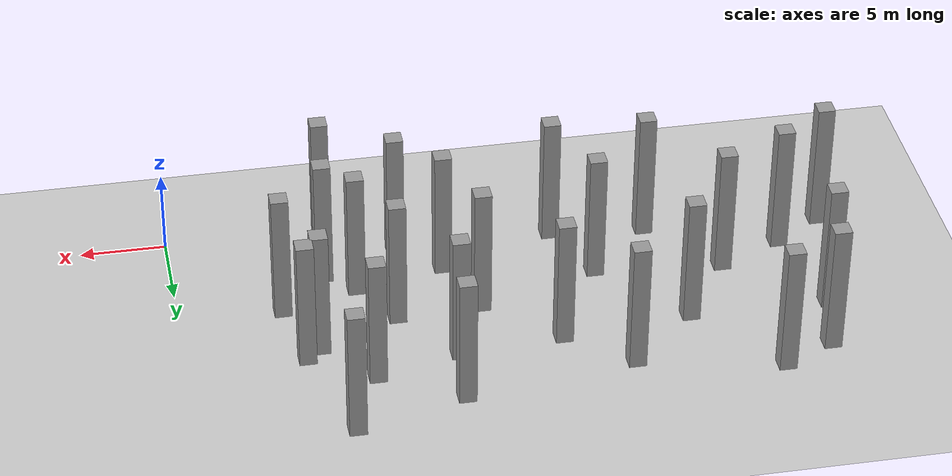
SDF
<sdf version="1.7">
 <world name="default">
  <model name="ground_plane">
   <static>1</static>
   <link name="link">
    <collision name="collision">
     <geometry><plane><normal>0 0 1</normal><size>100 100</size></plane></geometry>
     <surface>
      <contact><collide_bitmask>65535</collide_bitmask></contact>
      <friction><ode><mu>100</mu><mu2>50</mu2></ode></friction>
     </surface>
    </collision>
    <visual name="visual">
     <cast_shadows>0</cast_shadows>
     <geometry><plane><normal>0 0 1</normal><size>100 100</size></plane></geometry>
     <material>
      <script><uri>file://media/materials/scripts/gazebo.material</uri><name>Gazebo/Grey</name></script>
     </material>
    </visual>
   </link>
  </model>
  <model name="unit_box_static66">
   <link name="link">
    <inertial>
     <mass>1</mass>
     <inertia>
      <ixx>0.166667</ixx>
      <ixy>0</ixy>
      <ixz>0</ixz>
      <iyy>0.166667</iyy>
      <iyz>0</iyz>
      <izz>0.166667</izz>
     </inertia>
    </inertial>
    <visual name="visual">
     <geometry><box><size>1 1 8</size></box></geometry>
     <material>
      <script><name>Gazebo/Grey</name><uri>file://media/materials/scripts/gazebo.material</uri></script>
      <shader type="pixel"/>
     </material>
    </visual>
    <collision name="collision">
     <geometry><box><size>1 1 8</size></box></geometry>
     <surface>
      <friction>
       <ode><mu>1</mu><mu2>1</mu2><fdir1>0 0 0</fdir1><slip1>0</slip1><slip2>0</slip2></ode>
       <torsional>
        <coefficient>1</coefficient>
        <patch_radius>0</patch_radius>
        <surface_radius>0</surface_radius>
        <use_patch_radius>1</use_patch_radius>
        <ode><slip>0</slip></ode>
       </torsional>
      </friction>
      <bounce><restitution_coefficient>0</restitution_coefficient><threshold>1e+06</threshold></bounce>
      <contact>
       <collide_without_contact>0</collide_without_contact>
       <collide_without_contact_bitmask>1</collide_without_contact_bitmask>
       <collide_bitmask>1</collide_bitmask>
       <ode>
        <soft_cfm>0</soft_cfm>
        <soft_erp>0.2</soft_erp>
        <kp>1e+13</kp>
        <kd>1</kd>
        <max_vel>0.01</max_vel>
        <min_depth>0</min_depth>
       </ode>
       <bullet>
        <split_impulse>1</split_impulse>
        <split_impulse_penetration_threshold>-0.01</split_impulse_penetration_threshold>
        <soft_cfm>0</soft_cfm>
        <soft_erp>0.2</soft_erp>
        <kp>1e+13</kp>
        <kd>1</kd>
       </bullet>
      </contact>
     </surface>
    </collision>
   </link>
   <static>1</static>
   <pose>-15.7173 4.8814 4 0 -0 0</pose>
  </model>
  <model name="unit_box_static68">
   <link name="link">
    <inertial>
     <mass>1</mass>
     <inertia>
      <ixx>0.166667</ixx>
      <ixy>0</ixy>
      <ixz>0</ixz>
      <iyy>0.166667</iyy>
      <iyz>0</iyz>
      <izz>0.166667</izz>
     </inertia>
    </inertial>
    <visual name="visual">
     <geometry><box><size>1 1 8</size></box></geometry>
     <material>
      <script><name>Gazebo/Grey</name><uri>file://media/materials/scripts/gazebo.material</uri></script>
      <shader type="pixel"/>
     </material>
    </visual>
    <collision name="collision">
     <geometry><box><size>1 1 8</size></box></geometry>
     <surface>
      <friction>
       <ode><mu>1</mu><mu2>1</mu2><fdir1>0 0 0</fdir1><slip1>0</slip1><slip2>0</slip2></ode>
       <torsional>
        <coefficient>1</coefficient>
        <patch_radius>0</patch_radius>
        <surface_radius>0</surface_radius>
        <use_patch_radius>1</use_patch_radius>
        <ode><slip>0</slip></ode>
       </torsional>
      </friction>
      <bounce><restitution_coefficient>0</restitution_coefficient><threshold>1e+06</threshold></bounce>
      <contact>
       <collide_without_contact>0</collide_without_contact>
       <collide_without_contact_bitmask>1</collide_without_contact_bitmask>
       <collide_bitmask>1</collide_bitmask>
       <ode>
        <soft_cfm>0</soft_cfm>
        <soft_erp>0.2</soft_erp>
        <kp>1e+13</kp>
        <kd>1</kd>
        <max_vel>0.01</max_vel>
        <min_depth>0</min_depth>
       </ode>
       <bullet>
        <split_impulse>1</split_impulse>
        <split_impulse_penetration_threshold>-0.01</split_impulse_penetration_threshold>
        <soft_cfm>0</soft_cfm>
        <soft_erp>0.2</soft_erp>
        <kp>1e+13</kp>
        <kd>1</kd>
       </bullet>
      </contact>
     </surface>
    </collision>
   </link>
   <static>1</static>
   <pose>-8.76914 4.5745 4 0 -0 0</pose>
  </model>
  <model name="unit_box_static69">
   <link name="link">
    <inertial>
     <mass>1</mass>
     <inertia>
      <ixx>0.166667</ixx>
      <ixy>0</ixy>
      <ixz>0</ixz>
      <iyy>0.166667</iyy>
      <iyz>0</iyz>
      <izz>0.166667</izz>
     </inertia>
    </inertial>
    <visual name="visual">
     <geometry><box><size>1 1 8</size></box></geometry>
     <material>
      <script><name>Gazebo/Grey</name><uri>file://media/materials/scripts/gazebo.material</uri></script>
      <shader type="pixel"/>
     </material>
    </visual>
    <collision name="collision">
     <geometry><box><size>1 1 8</size></box></geometry>
     <surface>
      <friction>
       <ode><mu>1</mu><mu2>1</mu2><fdir1>0 0 0</fdir1><slip1>0</slip1><slip2>0</slip2></ode>
       <torsional>
        <coefficient>1</coefficient>
        <patch_radius>0</patch_radius>
        <surface_radius>0</surface_radius>
        <use_patch_radius>1</use_patch_radius>
        <ode><slip>0</slip></ode>
       </torsional>
      </friction>
      <bounce><restitution_coefficient>0</restitution_coefficient><threshold>1e+06</threshold></bounce>
      <contact>
       <collide_without_contact>0</collide_without_contact>
       <collide_without_contact_bitmask>1</collide_without_contact_bitmask>
       <collide_bitmask>1</collide_bitmask>
       <ode>
        <soft_cfm>0</soft_cfm>
        <soft_erp>0.2</soft_erp>
        <kp>1e+13</kp>
        <kd>1</kd>
        <max_vel>0.01</max_vel>
        <min_depth>0</min_depth>
       </ode>
       <bullet>
        <split_impulse>1</split_impulse>
        <split_impulse_penetration_threshold>-0.01</split_impulse_penetration_threshold>
        <soft_cfm>0</soft_cfm>
        <soft_erp>0.2</soft_erp>
        <kp>1e+13</kp>
        <kd>1</kd>
       </bullet>
      </contact>
     </surface>
    </collision>
   </link>
   <static>1</static>
   <pose>-10.4438 6.09552 4 0 -0 0</pose>
  </model>
  <model name="unit_box_static71">
   <link name="link">
    <inertial>
     <mass>1</mass>
     <inertia>
      <ixx>0.166667</ixx>
      <ixy>0</ixy>
      <ixz>0</ixz>
      <iyy>0.166667</iyy>
      <iyz>0</iyz>
      <izz>0.166667</izz>
     </inertia>
    </inertial>
    <visual name="visual">
     <geometry><box><size>1 1 8</size></box></geometry>
     <material>
      <script><name>Gazebo/Grey</name><uri>file://media/materials/scripts/gazebo.material</uri></script>
      <shader type="pixel"/>
     </material>
    </visual>
    <collision name="collision">
     <geometry><box><size>1 1 8</size></box></geometry>
     <surface>
      <friction>
       <ode><mu>1</mu><mu2>1</mu2><fdir1>0 0 0</fdir1><slip1>0</slip1><slip2>0</slip2></ode>
       <torsional>
        <coefficient>1</coefficient>
        <patch_radius>0</patch_radius>
        <surface_radius>0</surface_radius>
        <use_patch_radius>1</use_patch_radius>
        <ode><slip>0</slip></ode>
       </torsional>
      </friction>
      <bounce><restitution_coefficient>0</restitution_coefficient><threshold>1e+06</threshold></bounce>
      <contact>
       <collide_without_contact>0</collide_without_contact>
       <collide_without_contact_bitmask>1</collide_without_contact_bitmask>
       <collide_bitmask>1</collide_bitmask>
       <ode>
        <soft_cfm>0</soft_cfm>
        <soft_erp>0.2</soft_erp>
        <kp>1e+13</kp>
        <kd>1</kd>
        <max_vel>0.01</max_vel>
        <min_depth>0</min_depth>
       </ode>
       <bullet>
        <split_impulse>1</split_impulse>
        <split_impulse_penetration_threshold>-0.01</split_impulse_penetration_threshold>
        <soft_cfm>0</soft_cfm>
        <soft_erp>0.2</soft_erp>
        <kp>1e+13</kp>
        <kd>1</kd>
       </bullet>
      </contact>
     </surface>
    </collision>
   </link>
   <static>1</static>
   <pose>-38.5507 3.94057 4 0 -0 0</pose>
  </model>
  <model name="unit_box_static72">
   <link name="link">
    <inertial>
     <mass>1</mass>
     <inertia>
      <ixx>0.166667</ixx>
      <ixy>0</ixy>
      <ixz>0</ixz>
      <iyy>0.166667</iyy>
      <iyz>0</iyz>
      <izz>0.166667</izz>
     </inertia>
    </inertial>
    <visual name="visual">
     <geometry><box><size>1 1 8</size></box></geometry>
     <material>
      <script><name>Gazebo/Grey</name><uri>file://media/materials/scripts/gazebo.material</uri></script>
      <shader type="pixel"/>
     </material>
    </visual>
    <collision name="collision">
     <geometry><box><size>1 1 8</size></box></geometry>
     <surface>
      <friction>
       <ode><mu>1</mu><mu2>1</mu2><fdir1>0 0 0</fdir1><slip1>0</slip1><slip2>0</slip2></ode>
       <torsional>
        <coefficient>1</coefficient>
        <patch_radius>0</patch_radius>
        <surface_radius>0</surface_radius>
        <use_patch_radius>1</use_patch_radius>
        <ode><slip>0</slip></ode>
       </torsional>
      </friction>
      <bounce><restitution_coefficient>0</restitution_coefficient><threshold>1e+06</threshold></bounce>
      <contact>
       <collide_without_contact>0</collide_without_contact>
       <collide_without_contact_bitmask>1</collide_without_contact_bitmask>
       <collide_bitmask>1</collide_bitmask>
       <ode>
        <soft_cfm>0</soft_cfm>
        <soft_erp>0.2</soft_erp>
        <kp>1e+13</kp>
        <kd>1</kd>
        <max_vel>0.01</max_vel>
        <min_depth>0</min_depth>
       </ode>
       <bullet>
        <split_impulse>1</split_impulse>
        <split_impulse_penetration_threshold>-0.01</split_impulse_penetration_threshold>
        <soft_cfm>0</soft_cfm>
        <soft_erp>0.2</soft_erp>
        <kp>1e+13</kp>
        <kd>1</kd>
       </bullet>
      </contact>
     </surface>
    </collision>
   </link>
   <static>1</static>
   <pose>-24.94 15.4237 4 0 -0 0</pose>
  </model>
  <model name="unit_box_static82">
   <link name="link">
    <inertial>
     <mass>1</mass>
     <inertia>
      <ixx>0.166667</ixx>
      <ixy>0</ixy>
      <ixz>0</ixz>
      <iyy>0.166667</iyy>
      <iyz>0</iyz>
      <izz>0.166667</izz>
     </inertia>
    </inertial>
    <visual name="visual">
     <geometry><box><size>1 1 8</size></box></geometry>
     <material>
      <script><name>Gazebo/Grey</name><uri>file://media/materials/scripts/gazebo.material</uri></script>
      <shader type="pixel"/>
     </material>
    </visual>
    <collision name="collision">
     <geometry><box><size>1 1 8</size></box></geometry>
     <surface>
      <friction>
       <ode><mu>1</mu><mu2>1</mu2><fdir1>0 0 0</fdir1><slip1>0</slip1><slip2>0</slip2></ode>
       <torsional>
        <coefficient>1</coefficient>
        <patch_radius>0</patch_radius>
        <surface_radius>0</surface_radius>
        <use_patch_radius>1</use_patch_radius>
        <ode><slip>0</slip></ode>
       </torsional>
      </friction>
      <bounce><restitution_coefficient>0</restitution_coefficient><threshold>1e+06</threshold></bounce>
      <contact>
       <collide_without_contact>0</collide_without_contact>
       <collide_without_contact_bitmask>1</collide_without_contact_bitmask>
       <collide_bitmask>1</collide_bitmask>
       <ode>
        <soft_cfm>0</soft_cfm>
        <soft_erp>0.2</soft_erp>
        <kp>1e+13</kp>
        <kd>1</kd>
        <max_vel>0.01</max_vel>
        <min_depth>0</min_depth>
       </ode>
       <bullet>
        <split_impulse>1</split_impulse>
        <split_impulse_penetration_threshold>-0.01</split_impulse_penetration_threshold>
        <soft_cfm>0</soft_cfm>
        <soft_erp>0.2</soft_erp>
        <kp>1e+13</kp>
        <kd>1</kd>
       </bullet>
      </contact>
     </surface>
    </collision>
   </link>
   <static>1</static>
   <pose>-9.21757 0.33254 4 0 -0 0</pose>
  </model>
  <model name="unit_box_static83">
   <link name="link">
    <inertial>
     <mass>1</mass>
     <inertia>
      <ixx>0.166667</ixx>
      <ixy>0</ixy>
      <ixz>0</ixz>
      <iyy>0.166667</iyy>
      <iyz>0</iyz>
      <izz>0.166667</izz>
     </inertia>
    </inertial>
    <visual name="visual">
     <geometry><box><size>1 1 8</size></box></geometry>
     <material>
      <script><name>Gazebo/Grey</name><uri>file://media/materials/scripts/gazebo.material</uri></script>
      <shader type="pixel"/>
     </material>
    </visual>
    <collision name="collision">
     <geometry><box><size>1 1 8</size></box></geometry>
     <surface>
      <friction>
       <ode><mu>1</mu><mu2>1</mu2><fdir1>0 0 0</fdir1><slip1>0</slip1><slip2>0</slip2></ode>
       <torsional>
        <coefficient>1</coefficient>
        <patch_radius>0</patch_radius>
        <surface_radius>0</surface_radius>
        <use_patch_radius>1</use_patch_radius>
        <ode><slip>0</slip></ode>
       </torsional>
      </friction>
      <bounce><restitution_coefficient>0</restitution_coefficient><threshold>1e+06</threshold></bounce>
      <contact>
       <collide_without_contact>0</collide_without_contact>
       <collide_without_contact_bitmask>1</collide_without_contact_bitmask>
       <collide_bitmask>1</collide_bitmask>
       <ode>
        <soft_cfm>0</soft_cfm>
        <soft_erp>0.2</soft_erp>
        <kp>1e+13</kp>
        <kd>1</kd>
        <max_vel>0.01</max_vel>
        <min_depth>0</min_depth>
       </ode>
       <bullet>
        <split_impulse>1</split_impulse>
        <split_impulse_penetration_threshold>-0.01</split_impulse_penetration_threshold>
        <soft_cfm>0</soft_cfm>
        <soft_erp>0.2</soft_erp>
        <kp>1e+13</kp>
        <kd>1</kd>
       </bullet>
      </contact>
     </surface>
    </collision>
   </link>
   <static>1</static>
   <pose>-35.6682 5.76323 4 0 -0 0</pose>
  </model>
  <model name="unit_box_static84">
   <link name="link">
    <inertial>
     <mass>1</mass>
     <inertia>
      <ixx>0.166667</ixx>
      <ixy>0</ixy>
      <ixz>0</ixz>
      <iyy>0.166667</iyy>
      <iyz>0</iyz>
      <izz>0.166667</izz>
     </inertia>
    </inertial>
    <visual name="visual">
     <geometry><box><size>1 1 8</size></box></geometry>
     <material>
      <script><name>Gazebo/Grey</name><uri>file://media/materials/scripts/gazebo.material</uri></script>
      <shader type="pixel"/>
     </material>
    </visual>
    <collision name="collision">
     <geometry><box><size>1 1 8</size></box></geometry>
     <surface>
      <friction>
       <ode><mu>1</mu><mu2>1</mu2><fdir1>0 0 0</fdir1><slip1>0</slip1><slip2>0</slip2></ode>
       <torsional>
        <coefficient>1</coefficient>
        <patch_radius>0</patch_radius>
        <surface_radius>0</surface_radius>
        <use_patch_radius>1</use_patch_radius>
        <ode><slip>0</slip></ode>
       </torsional>
      </friction>
      <bounce><restitution_coefficient>0</restitution_coefficient><threshold>1e+06</threshold></bounce>
      <contact>
       <collide_without_contact>0</collide_without_contact>
       <collide_without_contact_bitmask>1</collide_without_contact_bitmask>
       <collide_bitmask>1</collide_bitmask>
       <ode>
        <soft_cfm>0</soft_cfm>
        <soft_erp>0.2</soft_erp>
        <kp>1e+13</kp>
        <kd>1</kd>
        <max_vel>0.01</max_vel>
        <min_depth>0</min_depth>
       </ode>
       <bullet>
        <split_impulse>1</split_impulse>
        <split_impulse_penetration_threshold>-0.01</split_impulse_penetration_threshold>
        <soft_cfm>0</soft_cfm>
        <soft_erp>0.2</soft_erp>
        <kp>1e+13</kp>
        <kd>1</kd>
       </bullet>
      </contact>
     </surface>
    </collision>
   </link>
   <static>1</static>
   <pose>-36.1901 15.687 4 0 -0 0</pose>
  </model>
  <model name="unit_box_static86">
   <link name="link">
    <inertial>
     <mass>1</mass>
     <inertia>
      <ixx>0.166667</ixx>
      <ixy>0</ixy>
      <ixz>0</ixz>
      <iyy>0.166667</iyy>
      <iyz>0</iyz>
      <izz>0.166667</izz>
     </inertia>
    </inertial>
    <visual name="visual">
     <geometry><box><size>1 1 8</size></box></geometry>
     <material>
      <script><name>Gazebo/Grey</name><uri>file://media/materials/scripts/gazebo.material</uri></script>
      <shader type="pixel"/>
     </material>
    </visual>
    <collision name="collision">
     <geometry><box><size>1 1 8</size></box></geometry>
     <surface>
      <friction>
       <ode><mu>1</mu><mu2>1</mu2><fdir1>0 0 0</fdir1><slip1>0</slip1><slip2>0</slip2></ode>
       <torsional>
        <coefficient>1</coefficient>
        <patch_radius>0</patch_radius>
        <surface_radius>0</surface_radius>
        <use_patch_radius>1</use_patch_radius>
        <ode><slip>0</slip></ode>
       </torsional>
      </friction>
      <bounce><restitution_coefficient>0</restitution_coefficient><threshold>1e+06</threshold></bounce>
      <contact>
       <collide_without_contact>0</collide_without_contact>
       <collide_without_contact_bitmask>1</collide_without_contact_bitmask>
       <collide_bitmask>1</collide_bitmask>
       <ode>
        <soft_cfm>0</soft_cfm>
        <soft_erp>0.2</soft_erp>
        <kp>1e+13</kp>
        <kd>1</kd>
        <max_vel>0.01</max_vel>
        <min_depth>0</min_depth>
       </ode>
       <bullet>
        <split_impulse>1</split_impulse>
        <split_impulse_penetration_threshold>-0.01</split_impulse_penetration_threshold>
        <soft_cfm>0</soft_cfm>
        <soft_erp>0.2</soft_erp>
        <kp>1e+13</kp>
        <kd>1</kd>
       </bullet>
      </contact>
     </surface>
    </collision>
   </link>
   <static>1</static>
   <pose>-5.98534 7.44605 4 0 -0 0</pose>
  </model>
  <model name="unit_box_static87">
   <link name="link">
    <inertial>
     <mass>1</mass>
     <inertia>
      <ixx>0.166667</ixx>
      <ixy>0</ixy>
      <ixz>0</ixz>
      <iyy>0.166667</iyy>
      <iyz>0</iyz>
      <izz>0.166667</izz>
     </inertia>
    </inertial>
    <visual name="visual">
     <geometry><box><size>1 1 8</size></box></geometry>
     <material>
      <script><name>Gazebo/Grey</name><uri>file://media/materials/scripts/gazebo.material</uri></script>
      <shader type="pixel"/>
     </material>
    </visual>
    <collision name="collision">
     <geometry><box><size>1 1 8</size></box></geometry>
     <surface>
      <friction>
       <ode><mu>1</mu><mu2>1</mu2><fdir1>0 0 0</fdir1><slip1>0</slip1><slip2>0</slip2></ode>
       <torsional>
        <coefficient>1</coefficient>
        <patch_radius>0</patch_radius>
        <surface_radius>0</surface_radius>
        <use_patch_radius>1</use_patch_radius>
        <ode><slip>0</slip></ode>
       </torsional>
      </friction>
      <bounce><restitution_coefficient>0</restitution_coefficient><threshold>1e+06</threshold></bounce>
      <contact>
       <collide_without_contact>0</collide_without_contact>
       <collide_without_contact_bitmask>1</collide_without_contact_bitmask>
       <collide_bitmask>1</collide_bitmask>
       <ode>
        <soft_cfm>0</soft_cfm>
        <soft_erp>0.2</soft_erp>
        <kp>1e+13</kp>
        <kd>1</kd>
        <max_vel>0.01</max_vel>
        <min_depth>0</min_depth>
       </ode>
       <bullet>
        <split_impulse>1</split_impulse>
        <split_impulse_penetration_threshold>-0.01</split_impulse_penetration_threshold>
        <soft_cfm>0</soft_cfm>
        <soft_erp>0.2</soft_erp>
        <kp>1e+13</kp>
        <kd>1</kd>
       </bullet>
      </contact>
     </surface>
    </collision>
   </link>
   <static>1</static>
   <pose>-28.0949 3.15473 4 0 -0 0</pose>
  </model>
  <model name="unit_box_static89">
   <link name="link">
    <inertial>
     <mass>1</mass>
     <inertia>
      <ixx>0.166667</ixx>
      <ixy>0</ixy>
      <ixz>0</ixz>
      <iyy>0.166667</iyy>
      <iyz>0</iyz>
      <izz>0.166667</izz>
     </inertia>
    </inertial>
    <visual name="visual">
     <geometry><box><size>1 1 8</size></box></geometry>
     <material>
      <script><name>Gazebo/Grey</name><uri>file://media/materials/scripts/gazebo.material</uri></script>
      <shader type="pixel"/>
     </material>
    </visual>
    <collision name="collision">
     <geometry><box><size>1 1 8</size></box></geometry>
     <surface>
      <friction>
       <ode><mu>1</mu><mu2>1</mu2><fdir1>0 0 0</fdir1><slip1>0</slip1><slip2>0</slip2></ode>
       <torsional>
        <coefficient>1</coefficient>
        <patch_radius>0</patch_radius>
        <surface_radius>0</surface_radius>
        <use_patch_radius>1</use_patch_radius>
        <ode><slip>0</slip></ode>
       </torsional>
      </friction>
      <bounce><restitution_coefficient>0</restitution_coefficient><threshold>1e+06</threshold></bounce>
      <contact>
       <collide_without_contact>0</collide_without_contact>
       <collide_without_contact_bitmask>1</collide_without_contact_bitmask>
       <collide_bitmask>1</collide_bitmask>
       <ode>
        <soft_cfm>0</soft_cfm>
        <soft_erp>0.2</soft_erp>
        <kp>1e+13</kp>
        <kd>1</kd>
        <max_vel>0.01</max_vel>
        <min_depth>0</min_depth>
       </ode>
       <bullet>
        <split_impulse>1</split_impulse>
        <split_impulse_penetration_threshold>-0.01</split_impulse_penetration_threshold>
        <soft_cfm>0</soft_cfm>
        <soft_erp>0.2</soft_erp>
        <kp>1e+13</kp>
        <kd>1</kd>
       </bullet>
      </contact>
     </surface>
    </collision>
   </link>
   <static>1</static>
   <pose>-31.8371 7.44602 4 0 -0 0</pose>
  </model>
  <model name="unit_box_static100">
   <link name="link">
    <inertial>
     <mass>1</mass>
     <inertia>
      <ixx>0.166667</ixx>
      <ixy>0</ixy>
      <ixz>0</ixz>
      <iyy>0.166667</iyy>
      <iyz>0</iyz>
      <izz>0.166667</izz>
     </inertia>
    </inertial>
    <visual name="visual">
     <geometry><box><size>1 1 8</size></box></geometry>
     <material>
      <script><name>Gazebo/Grey</name><uri>file://media/materials/scripts/gazebo.material</uri></script>
      <shader type="pixel"/>
     </material>
    </visual>
    <collision name="collision">
     <geometry><box><size>1 1 8</size></box></geometry>
     <surface>
      <friction>
       <ode><mu>1</mu><mu2>1</mu2><fdir1>0 0 0</fdir1><slip1>0</slip1><slip2>0</slip2></ode>
       <torsional>
        <coefficient>1</coefficient>
        <patch_radius>0</patch_radius>
        <surface_radius>0</surface_radius>
        <use_patch_radius>1</use_patch_radius>
        <ode><slip>0</slip></ode>
       </torsional>
      </friction>
      <bounce><restitution_coefficient>0</restitution_coefficient><threshold>1e+06</threshold></bounce>
      <contact>
       <collide_without_contact>0</collide_without_contact>
       <collide_without_contact_bitmask>1</collide_without_contact_bitmask>
       <collide_bitmask>1</collide_bitmask>
       <ode>
        <soft_cfm>0</soft_cfm>
        <soft_erp>0.2</soft_erp>
        <kp>1e+13</kp>
        <kd>1</kd>
        <max_vel>0.01</max_vel>
        <min_depth>0</min_depth>
       </ode>
       <bullet>
        <split_impulse>1</split_impulse>
        <split_impulse_penetration_threshold>-0.01</split_impulse_penetration_threshold>
        <soft_cfm>0</soft_cfm>
        <soft_erp>0.2</soft_erp>
        <kp>1e+13</kp>
        <kd>1</kd>
       </bullet>
      </contact>
     </surface>
    </collision>
   </link>
   <static>1</static>
   <pose>-6.78153 12.0356 4 0 -0 0</pose>
  </model>
  <model name="unit_box_static108">
   <link name="link">
    <inertial>
     <mass>1</mass>
     <inertia>
      <ixx>0.166667</ixx>
      <ixy>0</ixy>
      <ixz>0</ixz>
      <iyy>0.166667</iyy>
      <iyz>0</iyz>
      <izz>0.166667</izz>
     </inertia>
    </inertial>
    <visual name="visual">
     <geometry><box><size>1 1 8</size></box></geometry>
     <material>
      <script><name>Gazebo/Grey</name><uri>file://media/materials/scripts/gazebo.material</uri></script>
      <shader type="pixel"/>
     </material>
    </visual>
    <collision name="collision">
     <geometry><box><size>1 1 8</size></box></geometry>
     <surface>
      <friction>
       <ode><mu>1</mu><mu2>1</mu2><fdir1>0 0 0</fdir1><slip1>0</slip1><slip2>0</slip2></ode>
       <torsional>
        <coefficient>1</coefficient>
        <patch_radius>0</patch_radius>
        <surface_radius>0</surface_radius>
        <use_patch_radius>1</use_patch_radius>
        <ode><slip>0</slip></ode>
       </torsional>
      </friction>
      <bounce><restitution_coefficient>0</restitution_coefficient><threshold>1e+06</threshold></bounce>
      <contact>
       <collide_without_contact>0</collide_without_contact>
       <collide_without_contact_bitmask>1</collide_without_contact_bitmask>
       <collide_bitmask>1</collide_bitmask>
       <ode>
        <soft_cfm>0</soft_cfm>
        <soft_erp>0.2</soft_erp>
        <kp>1e+13</kp>
        <kd>1</kd>
        <max_vel>0.01</max_vel>
        <min_depth>0</min_depth>
       </ode>
       <bullet>
        <split_impulse>1</split_impulse>
        <split_impulse_penetration_threshold>-0.01</split_impulse_penetration_threshold>
        <soft_cfm>0</soft_cfm>
        <soft_erp>0.2</soft_erp>
        <kp>1e+13</kp>
        <kd>1</kd>
       </bullet>
      </contact>
     </surface>
    </collision>
   </link>
   <static>1</static>
   <pose>-33.185 17.1316 4 0 -0 0</pose>
  </model>
  <model name="unit_box_static111">
   <link name="link">
    <inertial>
     <mass>1</mass>
     <inertia>
      <ixx>0.166667</ixx>
      <ixy>0</ixy>
      <ixz>0</ixz>
      <iyy>0.166667</iyy>
      <iyz>0</iyz>
      <izz>0.166667</izz>
     </inertia>
    </inertial>
    <visual name="visual">
     <geometry><box><size>1 1 8</size></box></geometry>
     <material>
      <script><name>Gazebo/Grey</name><uri>file://media/materials/scripts/gazebo.material</uri></script>
      <shader type="pixel"/>
     </material>
    </visual>
    <collision name="collision">
     <geometry><box><size>1 1 8</size></box></geometry>
     <surface>
      <friction>
       <ode><mu>1</mu><mu2>1</mu2><fdir1>0 0 0</fdir1><slip1>0</slip1><slip2>0</slip2></ode>
       <torsional>
        <coefficient>1</coefficient>
        <patch_radius>0</patch_radius>
        <surface_radius>0</surface_radius>
        <use_patch_radius>1</use_patch_radius>
        <ode><slip>0</slip></ode>
       </torsional>
      </friction>
      <bounce><restitution_coefficient>0</restitution_coefficient><threshold>1e+06</threshold></bounce>
      <contact>
       <collide_without_contact>0</collide_without_contact>
       <collide_without_contact_bitmask>1</collide_without_contact_bitmask>
       <collide_bitmask>1</collide_bitmask>
       <ode>
        <soft_cfm>0</soft_cfm>
        <soft_erp>0.2</soft_erp>
        <kp>1e+13</kp>
        <kd>1</kd>
        <max_vel>0.01</max_vel>
        <min_depth>0</min_depth>
       </ode>
       <bullet>
        <split_impulse>1</split_impulse>
        <split_impulse_penetration_threshold>-0.01</split_impulse_penetration_threshold>
        <soft_cfm>0</soft_cfm>
        <soft_erp>0.2</soft_erp>
        <kp>1e+13</kp>
        <kd>1</kd>
       </bullet>
      </contact>
     </surface>
    </collision>
   </link>
   <static>1</static>
   <pose>-13.2701 2.65865 4 0 -0 0</pose>
  </model>
  <model name="unit_box_static114">
   <link name="link">
    <inertial>
     <mass>1</mass>
     <inertia>
      <ixx>0.166667</ixx>
      <ixy>0</ixy>
      <ixz>0</ixz>
      <iyy>0.166667</iyy>
      <iyz>0</iyz>
      <izz>0.166667</izz>
     </inertia>
    </inertial>
    <visual name="visual">
     <geometry><box><size>1 1 8</size></box></geometry>
     <material>
      <script><name>Gazebo/Grey</name><uri>file://media/materials/scripts/gazebo.material</uri></script>
      <shader type="pixel"/>
     </material>
    </visual>
    <collision name="collision">
     <geometry><box><size>1 1 8</size></box></geometry>
     <surface>
      <friction>
       <ode><mu>1</mu><mu2>1</mu2><fdir1>0 0 0</fdir1><slip1>0</slip1><slip2>0</slip2></ode>
       <torsional>
        <coefficient>1</coefficient>
        <patch_radius>0</patch_radius>
        <surface_radius>0</surface_radius>
        <use_patch_radius>1</use_patch_radius>
        <ode><slip>0</slip></ode>
       </torsional>
      </friction>
      <bounce><restitution_coefficient>0</restitution_coefficient><threshold>1e+06</threshold></bounce>
      <contact>
       <collide_without_contact>0</collide_without_contact>
       <collide_without_contact_bitmask>1</collide_without_contact_bitmask>
       <collide_bitmask>1</collide_bitmask>
       <ode>
        <soft_cfm>0</soft_cfm>
        <soft_erp>0.2</soft_erp>
        <kp>1e+13</kp>
        <kd>1</kd>
        <max_vel>0.01</max_vel>
        <min_depth>0</min_depth>
       </ode>
       <bullet>
        <split_impulse>1</split_impulse>
        <split_impulse_penetration_threshold>-0.01</split_impulse_penetration_threshold>
        <soft_cfm>0</soft_cfm>
        <soft_erp>0.2</soft_erp>
        <kp>1e+13</kp>
        <kd>1</kd>
       </bullet>
      </contact>
     </surface>
    </collision>
   </link>
   <static>1</static>
   <pose>-28.9127 11.792 4 0 -0 0</pose>
  </model>
  <model name="unit_box_static120">
   <link name="link">
    <inertial>
     <mass>1</mass>
     <inertia>
      <ixx>0.166667</ixx>
      <ixy>0</ixy>
      <ixz>0</ixz>
      <iyy>0.166667</iyy>
      <iyz>0</iyz>
      <izz>0.166667</izz>
     </inertia>
    </inertial>
    <visual name="visual">
     <geometry><box><size>1 1 8</size></box></geometry>
     <material>
      <script><name>Gazebo/Grey</name><uri>file://media/materials/scripts/gazebo.material</uri></script>
      <shader type="pixel"/>
     </material>
    </visual>
    <collision name="collision">
     <geometry><box><size>1 1 8</size></box></geometry>
     <surface>
      <friction>
       <ode><mu>1</mu><mu2>1</mu2><fdir1>0 0 0</fdir1><slip1>0</slip1><slip2>0</slip2></ode>
       <torsional>
        <coefficient>1</coefficient>
        <patch_radius>0</patch_radius>
        <surface_radius>0</surface_radius>
        <use_patch_radius>1</use_patch_radius>
        <ode><slip>0</slip></ode>
       </torsional>
      </friction>
      <bounce><restitution_coefficient>0</restitution_coefficient><threshold>1e+06</threshold></bounce>
      <contact>
       <collide_without_contact>0</collide_without_contact>
       <collide_without_contact_bitmask>1</collide_without_contact_bitmask>
       <collide_bitmask>1</collide_bitmask>
       <ode>
        <soft_cfm>0</soft_cfm>
        <soft_erp>0.2</soft_erp>
        <kp>1e+13</kp>
        <kd>1</kd>
        <max_vel>0.01</max_vel>
        <min_depth>0</min_depth>
       </ode>
       <bullet>
        <split_impulse>1</split_impulse>
        <split_impulse_penetration_threshold>-0.01</split_impulse_penetration_threshold>
        <soft_cfm>0</soft_cfm>
        <soft_erp>0.2</soft_erp>
        <kp>1e+13</kp>
        <kd>1</kd>
       </bullet>
      </contact>
     </surface>
    </collision>
   </link>
   <static>1</static>
   <pose>-10.4158 14.2993 4 0 -0 0</pose>
  </model>
  <model name="unit_box_static130">
   <link name="link">
    <inertial>
     <mass>1</mass>
     <inertia>
      <ixx>0.166667</ixx>
      <ixy>0</ixy>
      <ixz>0</ixz>
      <iyy>0.166667</iyy>
      <iyz>0</iyz>
      <izz>0.166667</izz>
     </inertia>
    </inertial>
    <visual name="visual">
     <geometry><box><size>1 1 8</size></box></geometry>
     <material>
      <script><name>Gazebo/Grey</name><uri>file://media/materials/scripts/gazebo.material</uri></script>
      <shader type="pixel"/>
     </material>
    </visual>
    <collision name="collision">
     <geometry><box><size>1 1 8</size></box></geometry>
     <surface>
      <friction>
       <ode><mu>1</mu><mu2>1</mu2><fdir1>0 0 0</fdir1><slip1>0</slip1><slip2>0</slip2></ode>
       <torsional>
        <coefficient>1</coefficient>
        <patch_radius>0</patch_radius>
        <surface_radius>0</surface_radius>
        <use_patch_radius>1</use_patch_radius>
        <ode><slip>0</slip></ode>
       </torsional>
      </friction>
      <bounce><restitution_coefficient>0</restitution_coefficient><threshold>1e+06</threshold></bounce>
      <contact>
       <collide_without_contact>0</collide_without_contact>
       <collide_without_contact_bitmask>1</collide_without_contact_bitmask>
       <collide_bitmask>1</collide_bitmask>
       <ode>
        <soft_cfm>0</soft_cfm>
        <soft_erp>0.2</soft_erp>
        <kp>1e+13</kp>
        <kd>1</kd>
        <max_vel>0.01</max_vel>
        <min_depth>0</min_depth>
       </ode>
       <bullet>
        <split_impulse>1</split_impulse>
        <split_impulse_penetration_threshold>-0.01</split_impulse_penetration_threshold>
        <soft_cfm>0</soft_cfm>
        <soft_erp>0.2</soft_erp>
        <kp>1e+13</kp>
        <kd>1</kd>
       </bullet>
      </contact>
     </surface>
    </collision>
   </link>
   <static>1</static>
   <pose>-37.0438 11.9362 4 0 -0 0</pose>
  </model>
  <model name="unit_box_static144">
   <link name="link">
    <inertial>
     <mass>1</mass>
     <inertia>
      <ixx>0.166667</ixx>
      <ixy>0</ixy>
      <ixz>0</ixz>
      <iyy>0.166667</iyy>
      <iyz>0</iyz>
      <izz>0.166667</izz>
     </inertia>
    </inertial>
    <visual name="visual">
     <geometry><box><size>1 1 8</size></box></geometry>
     <material>
      <script><name>Gazebo/Grey</name><uri>file://media/materials/scripts/gazebo.material</uri></script>
      <shader type="pixel"/>
     </material>
    </visual>
    <collision name="collision">
     <geometry><box><size>1 1 8</size></box></geometry>
     <surface>
      <friction>
       <ode><mu>1</mu><mu2>1</mu2><fdir1>0 0 0</fdir1><slip1>0</slip1><slip2>0</slip2></ode>
       <torsional>
        <coefficient>1</coefficient>
        <patch_radius>0</patch_radius>
        <surface_radius>0</surface_radius>
        <use_patch_radius>1</use_patch_radius>
        <ode><slip>0</slip></ode>
       </torsional>
      </friction>
      <bounce><restitution_coefficient>0</restitution_coefficient><threshold>1e+06</threshold></bounce>
      <contact>
       <collide_without_contact>0</collide_without_contact>
       <collide_without_contact_bitmask>1</collide_without_contact_bitmask>
       <collide_bitmask>1</collide_bitmask>
       <ode>
        <soft_cfm>0</soft_cfm>
        <soft_erp>0.2</soft_erp>
        <kp>1e+13</kp>
        <kd>1</kd>
        <max_vel>0.01</max_vel>
        <min_depth>0</min_depth>
       </ode>
       <bullet>
        <split_impulse>1</split_impulse>
        <split_impulse_penetration_threshold>-0.01</split_impulse_penetration_threshold>
        <soft_cfm>0</soft_cfm>
        <soft_erp>0.2</soft_erp>
        <kp>1e+13</kp>
        <kd>1</kd>
       </bullet>
      </contact>
     </surface>
    </collision>
   </link>
   <static>1</static>
   <pose>-7.67483 11.2344 4 0 -0 0</pose>
  </model>
  <model name="unit_box_static162">
   <link name="link">
    <inertial>
     <mass>1</mass>
     <inertia>
      <ixx>0.166667</ixx>
      <ixy>0</ixy>
      <ixz>0</ixz>
      <iyy>0.166667</iyy>
      <iyz>0</iyz>
      <izz>0.166667</izz>
     </inertia>
    </inertial>
    <visual name="visual">
     <geometry><box><size>1 1 8</size></box></geometry>
     <material>
      <script><name>Gazebo/Grey</name><uri>file://media/materials/scripts/gazebo.material</uri></script>
      <shader type="pixel"/>
     </material>
    </visual>
    <collision name="collision">
     <geometry><box><size>1 1 8</size></box></geometry>
     <surface>
      <friction>
       <ode><mu>1</mu><mu2>1</mu2><fdir1>0 0 0</fdir1><slip1>0</slip1><slip2>0</slip2></ode>
       <torsional>
        <coefficient>1</coefficient>
        <patch_radius>0</patch_radius>
        <surface_radius>0</surface_radius>
        <use_patch_radius>1</use_patch_radius>
        <ode><slip>0</slip></ode>
       </torsional>
      </friction>
      <bounce><restitution_coefficient>0</restitution_coefficient><threshold>1e+06</threshold></bounce>
      <contact>
       <collide_without_contact>0</collide_without_contact>
       <collide_without_contact_bitmask>1</collide_without_contact_bitmask>
       <collide_bitmask>1</collide_bitmask>
       <ode>
        <soft_cfm>0</soft_cfm>
        <soft_erp>0.2</soft_erp>
        <kp>1e+13</kp>
        <kd>1</kd>
        <max_vel>0.01</max_vel>
        <min_depth>0</min_depth>
       </ode>
       <bullet>
        <split_impulse>1</split_impulse>
        <split_impulse_penetration_threshold>-0.01</split_impulse_penetration_threshold>
        <soft_cfm>0</soft_cfm>
        <soft_erp>0.2</soft_erp>
        <kp>1e+13</kp>
        <kd>1</kd>
       </bullet>
      </contact>
     </surface>
    </collision>
   </link>
   <static>1</static>
   <pose>-8.62076 18.6076 4 0 -0 0</pose>
  </model>
  <model name="unit_box_static165">
   <link name="link">
    <inertial>
     <mass>1</mass>
     <inertia>
      <ixx>0.166667</ixx>
      <ixy>0</ixy>
      <ixz>0</ixz>
      <iyy>0.166667</iyy>
      <iyz>0</iyz>
      <izz>0.166667</izz>
     </inertia>
    </inertial>
    <visual name="visual">
     <geometry><box><size>1 1 8</size></box></geometry>
     <material>
      <script><name>Gazebo/Grey</name><uri>file://media/materials/scripts/gazebo.material</uri></script>
      <shader type="pixel"/>
     </material>
    </visual>
    <collision name="collision">
     <geometry><box><size>1 1 8</size></box></geometry>
     <surface>
      <friction>
       <ode><mu>1</mu><mu2>1</mu2><fdir1>0 0 0</fdir1><slip1>0</slip1><slip2>0</slip2></ode>
       <torsional>
        <coefficient>1</coefficient>
        <patch_radius>0</patch_radius>
        <surface_radius>0</surface_radius>
        <use_patch_radius>1</use_patch_radius>
        <ode><slip>0</slip></ode>
       </torsional>
      </friction>
      <bounce><restitution_coefficient>0</restitution_coefficient><threshold>1e+06</threshold></bounce>
      <contact>
       <collide_without_contact>0</collide_without_contact>
       <collide_without_contact_bitmask>1</collide_without_contact_bitmask>
       <collide_bitmask>1</collide_bitmask>
       <ode>
        <soft_cfm>0</soft_cfm>
        <soft_erp>0.2</soft_erp>
        <kp>1e+13</kp>
        <kd>1</kd>
        <max_vel>0.01</max_vel>
        <min_depth>0</min_depth>
       </ode>
       <bullet>
        <split_impulse>1</split_impulse>
        <split_impulse_penetration_threshold>-0.01</split_impulse_penetration_threshold>
        <soft_cfm>0</soft_cfm>
        <soft_erp>0.2</soft_erp>
        <kp>1e+13</kp>
        <kd>1</kd>
       </bullet>
      </contact>
     </surface>
    </collision>
   </link>
   <static>1</static>
   <pose>-15.0026 16.8631 4 0 -0 0</pose>
  </model>
  <model name="unit_box_static168">
   <link name="link">
    <inertial>
     <mass>1</mass>
     <inertia>
      <ixx>0.166667</ixx>
      <ixy>0</ixy>
      <ixz>0</ixz>
      <iyy>0.166667</iyy>
      <iyz>0</iyz>
      <izz>0.166667</izz>
     </inertia>
    </inertial>
    <visual name="visual">
     <geometry><box><size>1 1 8</size></box></geometry>
     <material>
      <script><name>Gazebo/Grey</name><uri>file://media/materials/scripts/gazebo.material</uri></script>
      <shader type="pixel"/>
     </material>
    </visual>
    <collision name="collision">
     <geometry><box><size>1 1 8</size></box></geometry>
     <surface>
      <friction>
       <ode><mu>1</mu><mu2>1</mu2><fdir1>0 0 0</fdir1><slip1>0</slip1><slip2>0</slip2></ode>
       <torsional>
        <coefficient>1</coefficient>
        <patch_radius>0</patch_radius>
        <surface_radius>0</surface_radius>
        <use_patch_radius>1</use_patch_radius>
        <ode><slip>0</slip></ode>
       </torsional>
      </friction>
      <bounce><restitution_coefficient>0</restitution_coefficient><threshold>1e+06</threshold></bounce>
      <contact>
       <collide_without_contact>0</collide_without_contact>
       <collide_without_contact_bitmask>1</collide_without_contact_bitmask>
       <collide_bitmask>1</collide_bitmask>
       <ode>
        <soft_cfm>0</soft_cfm>
        <soft_erp>0.2</soft_erp>
        <kp>1e+13</kp>
        <kd>1</kd>
        <max_vel>0.01</max_vel>
        <min_depth>0</min_depth>
       </ode>
       <bullet>
        <split_impulse>1</split_impulse>
        <split_impulse_penetration_threshold>-0.01</split_impulse_penetration_threshold>
        <soft_cfm>0</soft_cfm>
        <soft_erp>0.2</soft_erp>
        <kp>1e+13</kp>
        <kd>1</kd>
       </bullet>
      </contact>
     </surface>
    </collision>
   </link>
   <static>1</static>
   <pose>-17.2995 8.88827 4 0 -0 0</pose>
  </model>
  <model name="unit_box_static170">
   <link name="link">
    <inertial>
     <mass>1</mass>
     <inertia>
      <ixx>0.166667</ixx>
      <ixy>0</ixy>
      <ixz>0</ixz>
      <iyy>0.166667</iyy>
      <iyz>0</iyz>
      <izz>0.166667</izz>
     </inertia>
    </inertial>
    <visual name="visual">
     <geometry><box><size>1 1 8</size></box></geometry>
     <material>
      <script><name>Gazebo/Grey</name><uri>file://media/materials/scripts/gazebo.material</uri></script>
      <shader type="pixel"/>
     </material>
    </visual>
    <collision name="collision">
     <geometry><box><size>1 1 8</size></box></geometry>
     <surface>
      <friction>
       <ode><mu>1</mu><mu2>1</mu2><fdir1>0 0 0</fdir1><slip1>0</slip1><slip2>0</slip2></ode>
       <torsional>
        <coefficient>1</coefficient>
        <patch_radius>0</patch_radius>
        <surface_radius>0</surface_radius>
        <use_patch_radius>1</use_patch_radius>
        <ode><slip>0</slip></ode>
       </torsional>
      </friction>
      <bounce><restitution_coefficient>0</restitution_coefficient><threshold>1e+06</threshold></bounce>
      <contact>
       <collide_without_contact>0</collide_without_contact>
       <collide_without_contact_bitmask>1</collide_without_contact_bitmask>
       <collide_bitmask>1</collide_bitmask>
       <ode>
        <soft_cfm>0</soft_cfm>
        <soft_erp>0.2</soft_erp>
        <kp>1e+13</kp>
        <kd>1</kd>
        <max_vel>0.01</max_vel>
        <min_depth>0</min_depth>
       </ode>
       <bullet>
        <split_impulse>1</split_impulse>
        <split_impulse_penetration_threshold>-0.01</split_impulse_penetration_threshold>
        <soft_cfm>0</soft_cfm>
        <soft_erp>0.2</soft_erp>
        <kp>1e+13</kp>
        <kd>1</kd>
       </bullet>
      </contact>
     </surface>
    </collision>
   </link>
   <static>1</static>
   <pose>-15.3138 13.035 4 0 -0 0</pose>
  </model>
  <model name="unit_box_static173">
   <link name="link">
    <inertial>
     <mass>1</mass>
     <inertia>
      <ixx>0.166667</ixx>
      <ixy>0</ixy>
      <ixz>0</ixz>
      <iyy>0.166667</iyy>
      <iyz>0</iyz>
      <izz>0.166667</izz>
     </inertia>
    </inertial>
    <visual name="visual">
     <geometry><box><size>1 1 8</size></box></geometry>
     <material>
      <script><name>Gazebo/Grey</name><uri>file://media/materials/scripts/gazebo.material</uri></script>
      <shader type="pixel"/>
     </material>
    </visual>
    <collision name="collision">
     <geometry><box><size>1 1 8</size></box></geometry>
     <surface>
      <friction>
       <ode><mu>1</mu><mu2>1</mu2><fdir1>0 0 0</fdir1><slip1>0</slip1><slip2>0</slip2></ode>
       <torsional>
        <coefficient>1</coefficient>
        <patch_radius>0</patch_radius>
        <surface_radius>0</surface_radius>
        <use_patch_radius>1</use_patch_radius>
        <ode><slip>0</slip></ode>
       </torsional>
      </friction>
      <bounce><restitution_coefficient>0</restitution_coefficient><threshold>1e+06</threshold></bounce>
      <contact>
       <collide_without_contact>0</collide_without_contact>
       <collide_without_contact_bitmask>1</collide_without_contact_bitmask>
       <collide_bitmask>1</collide_bitmask>
       <ode>
        <soft_cfm>0</soft_cfm>
        <soft_erp>0.2</soft_erp>
        <kp>1e+13</kp>
        <kd>1</kd>
        <max_vel>0.01</max_vel>
        <min_depth>0</min_depth>
       </ode>
       <bullet>
        <split_impulse>1</split_impulse>
        <split_impulse_penetration_threshold>-0.01</split_impulse_penetration_threshold>
        <soft_cfm>0</soft_cfm>
        <soft_erp>0.2</soft_erp>
        <kp>1e+13</kp>
        <kd>1</kd>
       </bullet>
      </contact>
     </surface>
    </collision>
   </link>
   <static>1</static>
   <pose>-21.3551 12.5493 4 0 -0 0</pose>
  </model>
  <model name="unit_box_static180">
   <link name="link">
    <inertial>
     <mass>1</mass>
     <inertia>
      <ixx>0.166667</ixx>
      <ixy>0</ixy>
      <ixz>0</ixz>
      <iyy>0.166667</iyy>
      <iyz>0</iyz>
      <izz>0.166667</izz>
     </inertia>
    </inertial>
    <visual name="visual">
     <geometry><box><size>1 1 8</size></box></geometry>
     <material>
      <script><name>Gazebo/Grey</name><uri>file://media/materials/scripts/gazebo.material</uri></script>
      <shader type="pixel"/>
     </material>
    </visual>
    <collision name="collision">
     <geometry><box><size>1 1 8</size></box></geometry>
     <surface>
      <friction>
       <ode><mu>1</mu><mu2>1</mu2><fdir1>0 0 0</fdir1><slip1>0</slip1><slip2>0</slip2></ode>
       <torsional>
        <coefficient>1</coefficient>
        <patch_radius>0</patch_radius>
        <surface_radius>0</surface_radius>
        <use_patch_radius>1</use_patch_radius>
        <ode><slip>0</slip></ode>
       </torsional>
      </friction>
      <bounce><restitution_coefficient>0</restitution_coefficient><threshold>1e+06</threshold></bounce>
      <contact>
       <collide_without_contact>0</collide_without_contact>
       <collide_without_contact_bitmask>1</collide_without_contact_bitmask>
       <collide_bitmask>1</collide_bitmask>
       <ode>
        <soft_cfm>0</soft_cfm>
        <soft_erp>0.2</soft_erp>
        <kp>1e+13</kp>
        <kd>1</kd>
        <max_vel>0.01</max_vel>
        <min_depth>0</min_depth>
       </ode>
       <bullet>
        <split_impulse>1</split_impulse>
        <split_impulse_penetration_threshold>-0.01</split_impulse_penetration_threshold>
        <soft_cfm>0</soft_cfm>
        <soft_erp>0.2</soft_erp>
        <kp>1e+13</kp>
        <kd>1</kd>
       </bullet>
      </contact>
     </surface>
    </collision>
   </link>
   <static>1</static>
   <pose>-24.3849 6.72046 4 0 -0 0</pose>
  </model>
  <model name="unit_box_static186">
   <link name="link">
    <inertial>
     <mass>1</mass>
     <inertia>
      <ixx>0.166667</ixx>
      <ixy>0</ixy>
      <ixz>0</ixz>
      <iyy>0.166667</iyy>
      <iyz>0</iyz>
      <izz>0.166667</izz>
     </inertia>
    </inertial>
    <visual name="visual">
     <geometry><box><size>1 1 8</size></box></geometry>
     <material>
      <script><name>Gazebo/Grey</name><uri>file://media/materials/scripts/gazebo.material</uri></script>
      <shader type="pixel"/>
     </material>
    </visual>
    <collision name="collision">
     <geometry><box><size>1 1 8</size></box></geometry>
     <surface>
      <friction>
       <ode><mu>1</mu><mu2>1</mu2><fdir1>0 0 0</fdir1><slip1>0</slip1><slip2>0</slip2></ode>
       <torsional>
        <coefficient>1</coefficient>
        <patch_radius>0</patch_radius>
        <surface_radius>0</surface_radius>
        <use_patch_radius>1</use_patch_radius>
        <ode><slip>0</slip></ode>
       </torsional>
      </friction>
      <bounce><restitution_coefficient>0</restitution_coefficient><threshold>1e+06</threshold></bounce>
      <contact>
       <collide_without_contact>0</collide_without_contact>
       <collide_without_contact_bitmask>1</collide_without_contact_bitmask>
       <collide_bitmask>1</collide_bitmask>
       <ode>
        <soft_cfm>0</soft_cfm>
        <soft_erp>0.2</soft_erp>
        <kp>1e+13</kp>
        <kd>1</kd>
        <max_vel>0.01</max_vel>
        <min_depth>0</min_depth>
       </ode>
       <bullet>
        <split_impulse>1</split_impulse>
        <split_impulse_penetration_threshold>-0.01</split_impulse_penetration_threshold>
        <soft_cfm>0</soft_cfm>
        <soft_erp>0.2</soft_erp>
        <kp>1e+13</kp>
        <kd>1</kd>
       </bullet>
      </contact>
     </surface>
    </collision>
   </link>
   <static>1</static>
   <pose>-12.3634 9.14585 4 0 -0 0</pose>
  </model>
  <model name="unit_box_static138_clone_2">
   <link name="link">
    <inertial>
     <mass>1</mass>
     <inertia>
      <ixx>0.166667</ixx>
      <ixy>0</ixy>
      <ixz>0</ixz>
      <iyy>0.166667</iyy>
      <iyz>0</iyz>
      <izz>0.166667</izz>
     </inertia>
    </inertial>
    <visual name="visual">
     <geometry><box><size>1 1 8</size></box></geometry>
     <material>
      <script><name>Gazebo/Grey</name><uri>file://media/materials/scripts/gazebo.material</uri></script>
      <shader type="pixel"/>
     </material>
    </visual>
    <collision name="collision">
     <geometry><box><size>1 1 8</size></box></geometry>
     <surface>
      <friction>
       <ode><mu>1</mu><mu2>1</mu2><fdir1>0 0 0</fdir1><slip1>0</slip1><slip2>0</slip2></ode>
       <torsional>
        <coefficient>1</coefficient>
        <patch_radius>0</patch_radius>
        <surface_radius>0</surface_radius>
        <use_patch_radius>1</use_patch_radius>
        <ode><slip>0</slip></ode>
       </torsional>
      </friction>
      <bounce><restitution_coefficient>0</restitution_coefficient><threshold>1e+06</threshold></bounce>
      <contact>
       <collide_without_contact>0</collide_without_contact>
       <collide_without_contact_bitmask>1</collide_without_contact_bitmask>
       <collide_bitmask>1</collide_bitmask>
       <ode>
        <soft_cfm>0</soft_cfm>
        <soft_erp>0.2</soft_erp>
        <kp>1e+13</kp>
        <kd>1</kd>
        <max_vel>0.01</max_vel>
        <min_depth>0</min_depth>
       </ode>
       <bullet>
        <split_impulse>1</split_impulse>
        <split_impulse_penetration_threshold>-0.01</split_impulse_penetration_threshold>
        <soft_cfm>0</soft_cfm>
        <soft_erp>0.2</soft_erp>
        <kp>1e+13</kp>
        <kd>1</kd>
       </bullet>
      </contact>
     </surface>
    </collision>
   </link>
   <static>1</static>
   <pose>-22.5267 2.63236 4 0 -0 0</pose>
  </model>
 </world>
</sdf>
